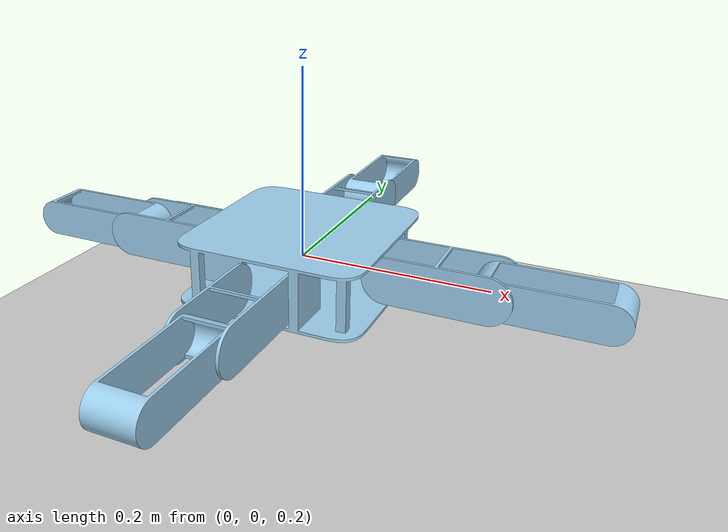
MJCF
<mujoco model="onshape">
  <compiler angle="radian"/>

  <asset>
    <mesh name="mainbody" file="mainbody.stl"/>
    <mesh name="arm1" file="arm1.stl"/>
    <mesh name="armtwo" file="armtwo.stl"/>
  </asset>

  <option gravity="0 0 -9.81" timestep="0.001" iterations="5000">

   </option>

  <worldbody>

  <geom name="floor" type="plane" pos="0 0 0" size="10 10 1" rgba="0.8 0.8 0.8 1" friction="1.0 0.2 0.0001" />

      <body name="main_body" pos="0 0 0.2">
      <freejoint name="root"/>
    <geom pos="0 0 -0.03" quat="1 0 0 0" type="mesh" rgba="0.615686 0.811765 0.929412 1" mesh="mainbody"/>
    <body name="arm1" pos="-0.1 -0.033 0" quat="0 0 0.707107 -0.707107">
      <inertial pos="0.05 0 -0.028" quat="0.5 0.5 0.5 0.5" mass="0.0533512" diaginertia="0.000122942 9.6728e-05 4.7685e-05"/>
      <joint name="main1" pos="0 0 0" axis="0 0 1" range="-0.523599 0.523599" actuatorfrcrange="-20 20" damping="10"/>
      <geom pos="0.05 0 -0.053" quat="1 0 0 0" type="mesh" rgba="0.615686 0.811765 0.929412 1" mesh="arm1"/>
      <body name="armtwo" pos="0.1 0 -0.003" quat="1 0 0 0">
        <inertial pos="0.055 0 -0.025" quat="0.5 0.5 0.5 0.5" mass="0.0616042" diaginertia="0.000184306 0.000166397 3.52013e-05"/>
        <joint name="elbow4" pos="0 0 0" axis="0 0 1" range="-1.0472 1.0472" actuatorfrcrange="-20 20" damping="10"/>
        <geom pos="0.11 0 -0.003" quat="0 1 0 0" type="mesh" rgba="0.615686 0.811765 0.929412 1" mesh="armtwo"/>
      </body>
    </body>
    <body name="arm1_2" pos="0.033 -0.1 0" quat="0.5 0.5 0.5 0.5">
      <inertial pos="-0.05 0 -0.028" quat="0.5 0.5 0.5 0.5" mass="0.0533512" diaginertia="0.000122942 9.6728e-05 4.7685e-05"/>
      <joint name="main2" pos="0 0 0" axis="0 0 1" range="-0.523599 0.523599" actuatorfrcrange="-20 20" damping="10"/>
      <geom pos="-0.05 0 -0.053" quat="1 0 0 0" type="mesh" rgba="0.615686 0.811765 0.929412 1" mesh="arm1"/>
      <body name="armtwo_2" pos="-0.1 0 -0.003" quat="1 0 0 0">
        <inertial pos="-0.055 0 -0.025" quat="0.5 0.5 0.5 0.5" mass="0.0616042" diaginertia="0.000184306 0.000166397 3.52013e-05"/>
        <joint name="elbow3" pos="0 0 0" axis="0 0 1" range="-1.0472 1.0472" actuatorfrcrange="-20 20" damping="10"/>
        <geom pos="0 0 -0.003" quat="0 1 0 0" type="mesh" rgba="0.615686 0.811765 0.929412 1" mesh="armtwo"/>
      </body>
    </body>
    <body name="arm1_3" pos="0.1 0.033 0" quat="0 0 -0.707107 -0.707107">
      <inertial pos="-0.05 0 -0.028" quat="0.5 0.5 0.5 0.5" mass="0.0533512" diaginertia="0.000122942 9.6728e-05 4.7685e-05"/>
      <joint name="main3" pos="0 0 0" axis="0 0 1" range="-0.523599 0.523599" actuatorfrcrange="-20 20" damping="10"/>
      <geom pos="-0.05 0 -0.053" quat="1 0 0 0" type="mesh" rgba="0.615686 0.811765 0.929412 1" mesh="arm1"/>
      <body name="armtwo_3" pos="-0.1 0 -0.003" quat="1 0 0 0">
        <inertial pos="-0.055 0 -0.025" quat="0.5 0.5 0.5 0.5" mass="0.0616042" diaginertia="0.000184306 0.000166397 3.52013e-05"/>
        <joint name="elbow2" pos="0 0 0" axis="0 0 1" range="-1.0472 1.0472" actuatorfrcrange="-20 20" damping="10"/>
        <geom pos="0 0 -0.003" quat="0 1 0 0" type="mesh" rgba="0.615686 0.811765 0.929412 1" mesh="armtwo"/>
      </body>
    </body>
    <body name="arm1_4" pos="-0.033 0.1 0" quat="0.5 0.5 -0.5 -0.5">
      <inertial pos="-0.05 0 -0.028" quat="0.5 0.5 0.5 0.5" mass="0.0533512" diaginertia="0.000122942 9.6728e-05 4.7685e-05"/>
      <joint name="main4" pos="0 0 0" axis="0 0 1" range="-0.523599 0.523599" actuatorfrcrange="-20 20" damping="10"/>
      <geom pos="-0.05 0 -0.053" quat="1 0 0 0" type="mesh" rgba="0.615686 0.811765 0.929412 1" mesh="arm1"/>
      <body name="armtwo_4" pos="-0.1 0 -0.003" quat="0.00320708 0 0 0.999995">
        <inertial pos="0.055 0 -0.025" quat="0.5 0.5 0.5 0.5" mass="0.0616042" diaginertia="0.000184306 0.000166397 3.52013e-05"/>
        <joint name="elbow1" pos="0 0 0" axis="0 0 1" range="-1.0472 1.0472" actuatorfrcrange="-20 20" damping="10"/>
        <geom pos="0.11 0 -0.003" quat="0 1 0 0" type="mesh" rgba="0.615686 0.811765 0.929412 1" mesh="armtwo"/>
      </body>
    </body>
    </body>
  </worldbody>

<actuator>
    <!-- Position-controlled motors for the main joints -->
    <position joint="main1" ctrllimited="true" ctrlrange="-0.523599 0.523599" kp="100" timeconst="0.2"/>
    <position joint="elbow4" ctrllimited="true" ctrlrange="-1.0472 1.0472" kp="100" timeconst="0.2"/>
    <position joint="main2" ctrllimited="true" ctrlrange="-0.523599 0.523599" kp="100" timeconst="0.2"/>
    <position joint="elbow3" ctrllimited="true" ctrlrange="-1.0472 1.0472" kp="100" timeconst="0.2"/>
    <position joint="main3" ctrllimited="true" ctrlrange="-0.523599 0.523599" kp="100" timeconst="0.2"/>
    <position joint="elbow2" ctrllimited="true" ctrlrange="-1.0472 1.0472" kp="100" timeconst="0.2"/>
    <position joint="main4" ctrllimited="true" ctrlrange="-0.523599 0.523599" kp="100" timeconst="0.2"/>
    <position joint="elbow1" ctrllimited="true" ctrlrange="-1.0472 1.0472" kp="100" timeconst="0.2"/>

</actuator>

</mujoco>
